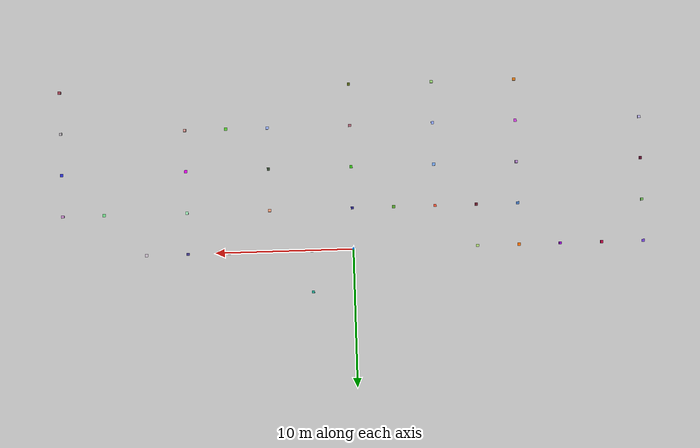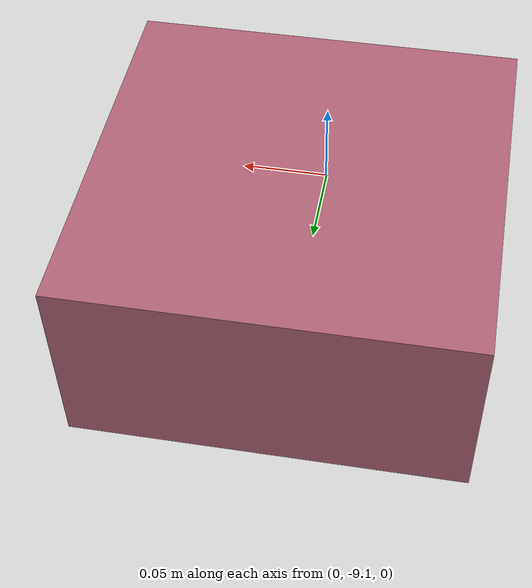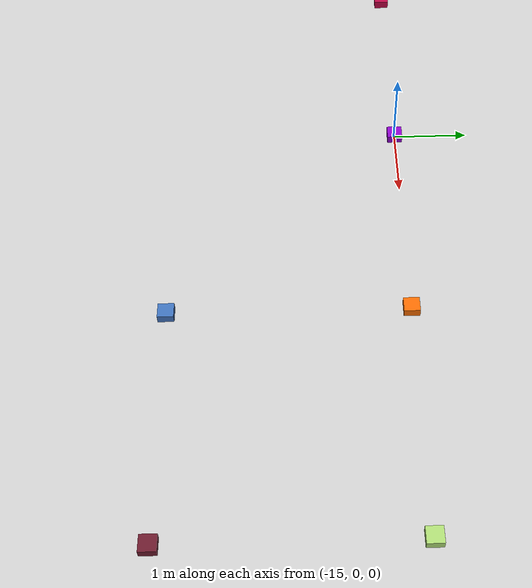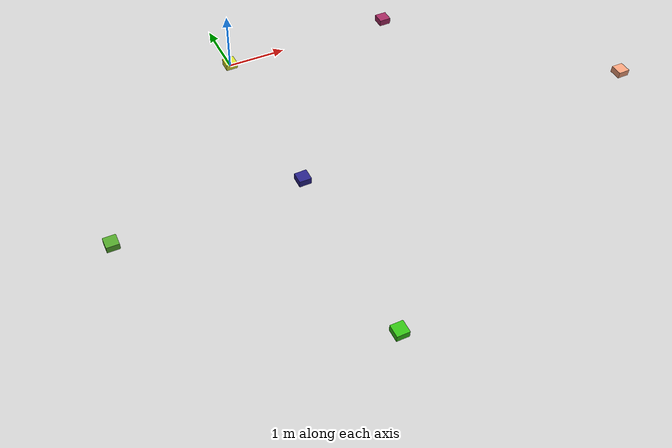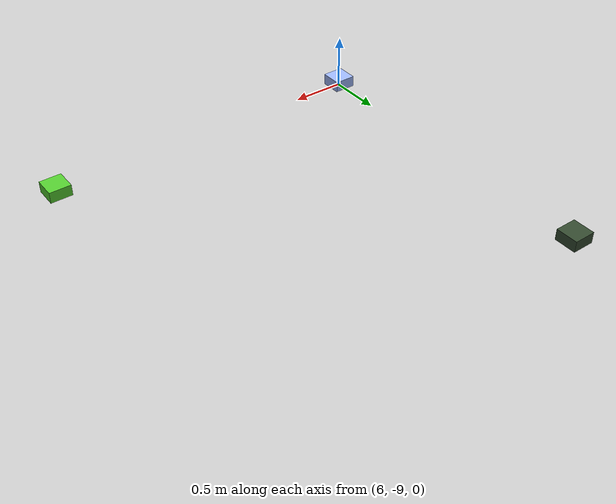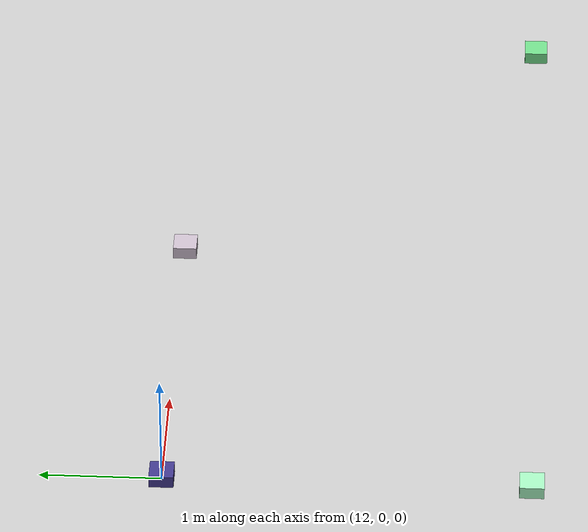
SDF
<?xml version="1.0" ?>
<sdf version="1.6">
  <world name="my_world">
   <gravity>0 0 -9.8</gravity>
    <model name='ground_plane'>
      <static>1</static>
      <link name='link'>
        <collision name='collision'>
          <geometry>
            <plane>
              <normal>0 0 1</normal>
              <size>200 200</size>
            </plane>
          </geometry>
          <surface>
            <friction>
              <ode>
                <mu>100</mu>
                <mu2>50</mu2>
              </ode>
              <torsional>
                <ode/>
              </torsional>
            </friction>
            <contact>
              <ode/>
            </contact>
            <bounce/>
          </surface>
          <max_contacts>10</max_contacts>
        </collision>
        <visual name='visual'>
          <cast_shadows>0</cast_shadows>
          <geometry>
            <plane>
              <normal>0 0 1</normal>
              <size>200 200</size>
            </plane>
          </geometry>
          <geometry>
            <mesh>
              <uri>file://media/materials/textures/grid_square.dae</uri>
              <scale>1 1 1</scale> <!-- Adjust the length and width of each grid square -->
            </mesh>
          </geometry>
          <material>
            <script>
              <uri>file://media/materials/scripts/gazebo.material</uri>
              <name>Gazebo/Grey</name>
            </script>
          </material>
        </visual>
        <self_collide>0</self_collide>
        <enable_wind>0</enable_wind>
        <kinematic>0</kinematic>
      </link>
    </model>

      <model name="AddisAbaba">
      <pose>0 0 0 0 -0 0</pose>
      <static>true</static>
      <link name='link'>
        <visual name='visual'>
          <geometry>
            <box>
              <size>0.2 0.2 0.2</size>
            </box>
          </geometry>
          <material>
            <ambient>0.837840692126784 0.867170784322269 0.18875320306435328 1</ambient>
            <diffuse>0.837840692126784 0.867170784322269 0.18875320306435328 1</diffuse>
            <emissive>0.837840692126784 0.867170784322269 0.18875320306435328 1</emissive>
          </material>
        </visual>
        <self_collide>0</self_collide>
        <inertial>
          <pose>0 0 0 0 -0 0</pose>
          <inertia>
            <ixx>1</ixx>
            <ixy>0</ixy>
            <ixz>0</ixz>
            <iyy>1</iyy>
            <iyz>0</iyz>
            <izz>1</izz>
          </inertia>
          <mass>1</mass>
        </inertial>
        <enable_wind>0</enable_wind>
        <kinematic>0</kinematic>
      </link>
    </model>

      <model name="Debrebirhan">
      <pose>3 3 0 0 -0 0</pose>
      <static>true</static>
      <link name='link'>
        <visual name='visual'>
          <geometry>
            <box>
              <size>0.2 0.2 0.2</size>
            </box>
          </geometry>
          <material>
            <ambient>0.11021136016832589 0.63514257290884 0.5560109234963666 1</ambient>
            <diffuse>0.11021136016832589 0.63514257290884 0.5560109234963666 1</diffuse>
            <emissive>0.11021136016832589 0.63514257290884 0.5560109234963666 1</emissive>
          </material>
        </visual>
        <self_collide>0</self_collide>
        <inertial>
          <pose>0 0 0 0 -0 0</pose>
          <inertia>
            <ixx>1</ixx>
            <ixy>0</ixy>
            <ixz>0</ixz>
            <iyy>1</iyy>
            <iyz>0</iyz>
            <izz>1</izz>
          </inertia>
          <mass>1</mass>
        </inertial>
        <enable_wind>0</enable_wind>
        <kinematic>0</kinematic>
      </link>
    </model>

      <model name="Adama">
      <pose>3 0 0 0 -0 0</pose>
      <static>true</static>
      <link name='link'>
        <visual name='visual'>
          <geometry>
            <box>
              <size>0.2 0.2 0.2</size>
            </box>
          </geometry>
          <material>
            <ambient>0.6329121261911624 0.16091573979236928 0.375223912684134 1</ambient>
            <diffuse>0.6329121261911624 0.16091573979236928 0.375223912684134 1</diffuse>
            <emissive>0.6329121261911624 0.16091573979236928 0.375223912684134 1</emissive>
          </material>
        </visual>
        <self_collide>0</self_collide>
        <inertial>
          <pose>0 0 0 0 -0 0</pose>
          <inertia>
            <ixx>1</ixx>
            <ixy>0</ixy>
            <ixz>0</ixz>
            <iyy>1</iyy>
            <iyz>0</iyz>
            <izz>1</izz>
          </inertia>
          <mass>1</mass>
        </inertial>
        <enable_wind>0</enable_wind>
        <kinematic>0</kinematic>
      </link>
    </model>

      <model name="Batu">
      <pose>0 -3 0 0 -0 0</pose>
      <static>true</static>
      <link name='link'>
        <visual name='visual'>
          <geometry>
            <box>
              <size>0.2 0.2 0.2</size>
            </box>
          </geometry>
          <material>
            <ambient>0.1553083001261688 0.13008156241125668 0.5267260401865164 1</ambient>
            <diffuse>0.1553083001261688 0.13008156241125668 0.5267260401865164 1</diffuse>
            <emissive>0.1553083001261688 0.13008156241125668 0.5267260401865164 1</emissive>
          </material>
        </visual>
        <self_collide>0</self_collide>
        <inertial>
          <pose>0 0 0 0 -0 0</pose>
          <inertia>
            <ixx>1</ixx>
            <ixy>0</ixy>
            <ixz>0</ixz>
            <iyy>1</iyy>
            <iyz>0</iyz>
            <izz>1</izz>
          </inertia>
          <mass>1</mass>
        </inertial>
        <enable_wind>0</enable_wind>
        <kinematic>0</kinematic>
      </link>
    </model>

      <model name="Assela">
      <pose>6 -3 0 0 -0 0</pose>
      <static>true</static>
      <link name='link'>
        <visual name='visual'>
          <geometry>
            <box>
              <size>0.2 0.2 0.2</size>
            </box>
          </geometry>
          <material>
            <ambient>0.9453897910569939 0.6205750120314741 0.4771886746758103 1</ambient>
            <diffuse>0.9453897910569939 0.6205750120314741 0.4771886746758103 1</diffuse>
            <emissive>0.9453897910569939 0.6205750120314741 0.4771886746758103 1</emissive>
          </material>
        </visual>
        <self_collide>0</self_collide>
        <inertial>
          <pose>0 0 0 0 -0 0</pose>
          <inertia>
            <ixx>1</ixx>
            <ixy>0</ixy>
            <ixz>0</ixz>
            <iyy>1</iyy>
            <iyz>0</iyz>
            <izz>1</izz>
          </inertia>
          <mass>1</mass>
        </inertial>
        <enable_wind>0</enable_wind>
        <kinematic>0</kinematic>
      </link>
    </model>

      <model name="Shashemene">
      <pose>0 -6 0 0 -0 0</pose>
      <static>true</static>
      <link name='link'>
        <visual name='visual'>
          <geometry>
            <box>
              <size>0.2 0.2 0.2</size>
            </box>
          </geometry>
          <material>
            <ambient>0.19769043545330722 0.7484289718310358 0.07895643451841838 1</ambient>
            <diffuse>0.19769043545330722 0.7484289718310358 0.07895643451841838 1</diffuse>
            <emissive>0.19769043545330722 0.7484289718310358 0.07895643451841838 1</emissive>
          </material>
        </visual>
        <self_collide>0</self_collide>
        <inertial>
          <pose>0 0 0 0 -0 0</pose>
          <inertia>
            <ixx>1</ixx>
            <ixy>0</ixy>
            <ixz>0</ixz>
            <iyy>1</iyy>
            <iyz>0</iyz>
            <izz>1</izz>
          </inertia>
          <mass>1</mass>
        </inertial>
        <enable_wind>0</enable_wind>
        <kinematic>0</kinematic>
      </link>
    </model>

      <model name="Hawasa">
      <pose>0 -9 0 0 -0 0</pose>
      <static>true</static>
      <link name='link'>
        <visual name='visual'>
          <geometry>
            <box>
              <size>0.2 0.2 0.2</size>
            </box>
          </geometry>
          <material>
            <ambient>0.6551940611539893 0.37052358948685693 0.442054203336284 1</ambient>
            <diffuse>0.6551940611539893 0.37052358948685693 0.442054203336284 1</diffuse>
            <emissive>0.6551940611539893 0.37052358948685693 0.442054203336284 1</emissive>
          </material>
        </visual>
        <self_collide>0</self_collide>
        <inertial>
          <pose>0 0 0 0 -0 0</pose>
          <inertia>
            <ixx>1</ixx>
            <ixy>0</ixy>
            <ixz>0</ixz>
            <iyy>1</iyy>
            <iyz>0</iyz>
            <izz>1</izz>
          </inertia>
          <mass>1</mass>
        </inertial>
        <enable_wind>0</enable_wind>
        <kinematic>0</kinematic>
      </link>
    </model>

      <model name="Dilla">
      <pose>0 -12 0 0 -0 0</pose>
      <static>true</static>
      <link name='link'>
        <visual name='visual'>
          <geometry>
            <box>
              <size>0.2 0.2 0.2</size>
            </box>
          </geometry>
          <material>
            <ambient>0.3220190205016378 0.3856239517725688 0.06905224761508455 1</ambient>
            <diffuse>0.3220190205016378 0.3856239517725688 0.06905224761508455 1</diffuse>
            <emissive>0.3220190205016378 0.3856239517725688 0.06905224761508455 1</emissive>
          </material>
        </visual>
        <self_collide>0</self_collide>
        <inertial>
          <pose>0 0 0 0 -0 0</pose>
          <inertia>
            <ixx>1</ixx>
            <ixy>0</ixy>
            <ixz>0</ixz>
            <iyy>1</iyy>
            <iyz>0</iyz>
            <izz>1</izz>
          </inertia>
          <mass>1</mass>
        </inertial>
        <enable_wind>0</enable_wind>
        <kinematic>0</kinematic>
      </link>
    </model>

      <model name="Assasa">
      <pose>6 -6 0 0 -0 0</pose>
      <static>true</static>
      <link name='link'>
        <visual name='visual'>
          <geometry>
            <box>
              <size>0.2 0.2 0.2</size>
            </box>
          </geometry>
          <material>
            <ambient>0.19971592408981886 0.2863755337983137 0.1847598079396907 1</ambient>
            <diffuse>0.19971592408981886 0.2863755337983137 0.1847598079396907 1</diffuse>
            <emissive>0.19971592408981886 0.2863755337983137 0.1847598079396907 1</emissive>
          </material>
        </visual>
        <self_collide>0</self_collide>
        <inertial>
          <pose>0 0 0 0 -0 0</pose>
          <inertia>
            <ixx>1</ixx>
            <ixy>0</ixy>
            <ixz>0</ixz>
            <iyy>1</iyy>
            <iyz>0</iyz>
            <izz>1</izz>
          </inertia>
          <mass>1</mass>
        </inertial>
        <enable_wind>0</enable_wind>
        <kinematic>0</kinematic>
      </link>
    </model>

      <model name="Dodolla">
      <pose>6 -9 0 0 -0 0</pose>
      <static>true</static>
      <link name='link'>
        <visual name='visual'>
          <geometry>
            <box>
              <size>0.2 0.2 0.2</size>
            </box>
          </geometry>
          <material>
            <ambient>0.6200001352528746 0.7168261816216244 0.9882337272025341 1</ambient>
            <diffuse>0.6200001352528746 0.7168261816216244 0.9882337272025341 1</diffuse>
            <emissive>0.6200001352528746 0.7168261816216244 0.9882337272025341 1</emissive>
          </material>
        </visual>
        <self_collide>0</self_collide>
        <inertial>
          <pose>0 0 0 0 -0 0</pose>
          <inertia>
            <ixx>1</ixx>
            <ixy>0</ixy>
            <ixz>0</ixz>
            <iyy>1</iyy>
            <iyz>0</iyz>
            <izz>1</izz>
          </inertia>
          <mass>1</mass>
        </inertial>
        <enable_wind>0</enable_wind>
        <kinematic>0</kinematic>
      </link>
    </model>

      <model name="Bale">
      <pose>9 -9 0 0 -0 0</pose>
      <static>true</static>
      <link name='link'>
        <visual name='visual'>
          <geometry>
            <box>
              <size>0.2 0.2 0.2</size>
            </box>
          </geometry>
          <material>
            <ambient>0.33278344873034493 0.8026117648819241 0.18802215158315672 1</ambient>
            <diffuse>0.33278344873034493 0.8026117648819241 0.18802215158315672 1</diffuse>
            <emissive>0.33278344873034493 0.8026117648819241 0.18802215158315672 1</emissive>
          </material>
        </visual>
        <self_collide>0</self_collide>
        <inertial>
          <pose>0 0 0 0 -0 0</pose>
          <inertia>
            <ixx>1</ixx>
            <ixy>0</ixy>
            <ixz>0</ixz>
            <iyy>1</iyy>
            <iyz>0</iyz>
            <izz>1</izz>
          </inertia>
          <mass>1</mass>
        </inertial>
        <enable_wind>0</enable_wind>
        <kinematic>0</kinematic>
      </link>
    </model>

      <model name="Goba">
      <pose>12 -6 0 0 -0 0</pose>
      <static>true</static>
      <link name='link'>
        <visual name='visual'>
          <geometry>
            <box>
              <size>0.2 0.2 0.2</size>
            </box>
          </geometry>
          <material>
            <ambient>0.872696224696223 0.01678969679831055 0.9078953194363549 1</ambient>
            <diffuse>0.872696224696223 0.01678969679831055 0.9078953194363549 1</diffuse>
            <emissive>0.872696224696223 0.01678969679831055 0.9078953194363549 1</emissive>
          </material>
        </visual>
        <self_collide>0</self_collide>
        <inertial>
          <pose>0 0 0 0 -0 0</pose>
          <inertia>
            <ixx>1</ixx>
            <ixy>0</ixy>
            <ixz>0</ixz>
            <iyy>1</iyy>
            <iyz>0</iyz>
            <izz>1</izz>
          </inertia>
          <mass>1</mass>
        </inertial>
        <enable_wind>0</enable_wind>
        <kinematic>0</kinematic>
      </link>
    </model>

      <model name="Softoumer">
      <pose>12 -9 0 0 -0 0</pose>
      <static>true</static>
      <link name='link'>
        <visual name='visual'>
          <geometry>
            <box>
              <size>0.2 0.2 0.2</size>
            </box>
          </geometry>
          <material>
            <ambient>0.8532857372821485 0.595786231751914 0.5697307312853777 1</ambient>
            <diffuse>0.8532857372821485 0.595786231751914 0.5697307312853777 1</diffuse>
            <emissive>0.8532857372821485 0.595786231751914 0.5697307312853777 1</emissive>
          </material>
        </visual>
        <self_collide>0</self_collide>
        <inertial>
          <pose>0 0 0 0 -0 0</pose>
          <inertia>
            <ixx>1</ixx>
            <ixy>0</ixy>
            <ixz>0</ixz>
            <iyy>1</iyy>
            <iyz>0</iyz>
            <izz>1</izz>
          </inertia>
          <mass>1</mass>
        </inertial>
        <enable_wind>0</enable_wind>
        <kinematic>0</kinematic>
      </link>
    </model>

      <model name="Matahara">
      <pose>6 0 0 0 -0 0</pose>
      <static>true</static>
      <link name='link'>
        <visual name='visual'>
          <geometry>
            <box>
              <size>0.2 0.2 0.2</size>
            </box>
          </geometry>
          <material>
            <ambient>0.8029285780605484 0.20693257203741688 0.9554051826423965 1</ambient>
            <diffuse>0.8029285780605484 0.20693257203741688 0.9554051826423965 1</diffuse>
            <emissive>0.8029285780605484 0.20693257203741688 0.9554051826423965 1</emissive>
          </material>
        </visual>
        <self_collide>0</self_collide>
        <inertial>
          <pose>0 0 0 0 -0 0</pose>
          <inertia>
            <ixx>1</ixx>
            <ixy>0</ixy>
            <ixz>0</ixz>
            <iyy>1</iyy>
            <iyz>0</iyz>
            <izz>1</izz>
          </inertia>
          <mass>1</mass>
        </inertial>
        <enable_wind>0</enable_wind>
        <kinematic>0</kinematic>
      </link>
    </model>

      <model name="Awash">
      <pose>9 0 0 0 -0 0</pose>
      <static>true</static>
      <link name='link'>
        <visual name='visual'>
          <geometry>
            <box>
              <size>0.2 0.2 0.2</size>
            </box>
          </geometry>
          <material>
            <ambient>0.5819405244460549 0.6711687679511 0.0538294470291234 1</ambient>
            <diffuse>0.5819405244460549 0.6711687679511 0.0538294470291234 1</diffuse>
            <emissive>0.5819405244460549 0.6711687679511 0.0538294470291234 1</emissive>
          </material>
        </visual>
        <self_collide>0</self_collide>
        <inertial>
          <pose>0 0 0 0 -0 0</pose>
          <inertia>
            <ixx>1</ixx>
            <ixy>0</ixy>
            <ixz>0</ixz>
            <iyy>1</iyy>
            <iyz>0</iyz>
            <izz>1</izz>
          </inertia>
          <mass>1</mass>
        </inertial>
        <enable_wind>0</enable_wind>
        <kinematic>0</kinematic>
      </link>
    </model>

      <model name="Harar">
      <pose>12 -3 0 0 -0 0</pose>
      <static>true</static>
      <link name='link'>
        <visual name='visual'>
          <geometry>
            <box>
              <size>0.2 0.2 0.2</size>
            </box>
          </geometry>
          <material>
            <ambient>0.651743163104007 0.9584192574321805 0.7580591155379144 1</ambient>
            <diffuse>0.651743163104007 0.9584192574321805 0.7580591155379144 1</diffuse>
            <emissive>0.651743163104007 0.9584192574321805 0.7580591155379144 1</emissive>
          </material>
        </visual>
        <self_collide>0</self_collide>
        <inertial>
          <pose>0 0 0 0 -0 0</pose>
          <inertia>
            <ixx>1</ixx>
            <ixy>0</ixy>
            <ixz>0</ixz>
            <iyy>1</iyy>
            <iyz>0</iyz>
            <izz>1</izz>
          </inertia>
          <mass>1</mass>
        </inertial>
        <enable_wind>0</enable_wind>
        <kinematic>0</kinematic>
      </link>
    </model>

      <model name="Diredawa">
      <pose>15 0 0 0 -0 0</pose>
      <static>true</static>
      <link name='link'>
        <visual name='visual'>
          <geometry>
            <box>
              <size>0.2 0.2 0.2</size>
            </box>
          </geometry>
          <material>
            <ambient>0.8027977459423752 0.7510262955205178 0.810495029525123 1</ambient>
            <diffuse>0.8027977459423752 0.7510262955205178 0.810495029525123 1</diffuse>
            <emissive>0.8027977459423752 0.7510262955205178 0.810495029525123 1</emissive>
          </material>
        </visual>
        <self_collide>0</self_collide>
        <inertial>
          <pose>0 0 0 0 -0 0</pose>
          <inertia>
            <ixx>1</ixx>
            <ixy>0</ixy>
            <ixz>0</ixz>
            <iyy>1</iyy>
            <iyz>0</iyz>
            <izz>1</izz>
          </inertia>
          <mass>1</mass>
        </inertial>
        <enable_wind>0</enable_wind>
        <kinematic>0</kinematic>
      </link>
    </model>

      <model name="Babile">
      <pose>18 -3 0 0 -0 0</pose>
      <static>true</static>
      <link name='link'>
        <visual name='visual'>
          <geometry>
            <box>
              <size>0.2 0.2 0.2</size>
            </box>
          </geometry>
          <material>
            <ambient>0.4507820630709587 0.8673272017579376 0.5446735850792898 1</ambient>
            <diffuse>0.4507820630709587 0.8673272017579376 0.5446735850792898 1</diffuse>
            <emissive>0.4507820630709587 0.8673272017579376 0.5446735850792898 1</emissive>
          </material>
        </visual>
        <self_collide>0</self_collide>
        <inertial>
          <pose>0 0 0 0 -0 0</pose>
          <inertia>
            <ixx>1</ixx>
            <ixy>0</ixy>
            <ixz>0</ixz>
            <iyy>1</iyy>
            <iyz>0</iyz>
            <izz>1</izz>
          </inertia>
          <mass>1</mass>
        </inertial>
        <enable_wind>0</enable_wind>
        <kinematic>0</kinematic>
      </link>
    </model>

      <model name="Jigjiga">
      <pose>21 -3 0 0 -0 0</pose>
      <static>true</static>
      <link name='link'>
        <visual name='visual'>
          <geometry>
            <box>
              <size>0.2 0.2 0.2</size>
            </box>
          </geometry>
          <material>
            <ambient>0.786755543765698 0.5417922728920173 0.802401431666569 1</ambient>
            <diffuse>0.786755543765698 0.5417922728920173 0.802401431666569 1</diffuse>
            <emissive>0.786755543765698 0.5417922728920173 0.802401431666569 1</emissive>
          </material>
        </visual>
        <self_collide>0</self_collide>
        <inertial>
          <pose>0 0 0 0 -0 0</pose>
          <inertia>
            <ixx>1</ixx>
            <ixy>0</ixy>
            <ixz>0</ixz>
            <iyy>1</iyy>
            <iyz>0</iyz>
            <izz>1</izz>
          </inertia>
          <mass>1</mass>
        </inertial>
        <enable_wind>0</enable_wind>
        <kinematic>0</kinematic>
      </link>
    </model>

      <model name="Dagahabur">
      <pose>21 -6 0 0 -0 0</pose>
      <static>true</static>
      <link name='link'>
        <visual name='visual'>
          <geometry>
            <box>
              <size>0.2 0.2 0.2</size>
            </box>
          </geometry>
          <material>
            <ambient>0.16112934070070606 0.1834317956431193 0.8125709335246278 1</ambient>
            <diffuse>0.16112934070070606 0.1834317956431193 0.8125709335246278 1</diffuse>
            <emissive>0.16112934070070606 0.1834317956431193 0.8125709335246278 1</emissive>
          </material>
        </visual>
        <self_collide>0</self_collide>
        <inertial>
          <pose>0 0 0 0 -0 0</pose>
          <inertia>
            <ixx>1</ixx>
            <ixy>0</ixy>
            <ixz>0</ixz>
            <iyy>1</iyy>
            <iyz>0</iyz>
            <izz>1</izz>
          </inertia>
          <mass>1</mass>
        </inertial>
        <enable_wind>0</enable_wind>
        <kinematic>0</kinematic>
      </link>
    </model>

      <model name="Kebridehar">
      <pose>21 -9 0 0 -0 0</pose>
      <static>true</static>
      <link name='link'>
        <visual name='visual'>
          <geometry>
            <box>
              <size>0.2 0.2 0.2</size>
            </box>
          </geometry>
          <material>
            <ambient>0.7001952338067781 0.6716948381685803 0.7066639578154397 1</ambient>
            <diffuse>0.7001952338067781 0.6716948381685803 0.7066639578154397 1</diffuse>
            <emissive>0.7001952338067781 0.6716948381685803 0.7066639578154397 1</emissive>
          </material>
        </visual>
        <self_collide>0</self_collide>
        <inertial>
          <pose>0 0 0 0 -0 0</pose>
          <inertia>
            <ixx>1</ixx>
            <ixy>0</ixy>
            <ixz>0</ixz>
            <iyy>1</iyy>
            <iyz>0</iyz>
            <izz>1</izz>
          </inertia>
          <mass>1</mass>
        </inertial>
        <enable_wind>0</enable_wind>
        <kinematic>0</kinematic>
      </link>
    </model>

      <model name="Gode">
      <pose>21 -12 0 0 -0 0</pose>
      <static>true</static>
      <link name='link'>
        <visual name='visual'>
          <geometry>
            <box>
              <size>0.2 0.2 0.2</size>
            </box>
          </geometry>
          <material>
            <ambient>0.6225334183500009 0.2553405633723983 0.325457292926959 1</ambient>
            <diffuse>0.6225334183500009 0.2553405633723983 0.325457292926959 1</diffuse>
            <emissive>0.6225334183500009 0.2553405633723983 0.325457292926959 1</emissive>
          </material>
        </visual>
        <self_collide>0</self_collide>
        <inertial>
          <pose>0 0 0 0 -0 0</pose>
          <inertia>
            <ixx>1</ixx>
            <ixy>0</ixy>
            <ixz>0</ixz>
            <iyy>1</iyy>
            <iyz>0</iyz>
            <izz>1</izz>
          </inertia>
          <mass>1</mass>
        </inertial>
        <enable_wind>0</enable_wind>
        <kinematic>0</kinematic>
      </link>
    </model>

      <model name="Chiro">
      <pose>12 0 0 0 -0 0</pose>
      <static>true</static>
      <link name='link'>
        <visual name='visual'>
          <geometry>
            <box>
              <size>0.2 0.2 0.2</size>
            </box>
          </geometry>
          <material>
            <ambient>0.25814340234373 0.22268088925038554 0.5546023891147831 1</ambient>
            <diffuse>0.25814340234373 0.22268088925038554 0.5546023891147831 1</diffuse>
            <emissive>0.25814340234373 0.22268088925038554 0.5546023891147831 1</emissive>
          </material>
        </visual>
        <self_collide>0</self_collide>
        <inertial>
          <pose>0 0 0 0 -0 0</pose>
          <inertia>
            <ixx>1</ixx>
            <ixy>0</ixy>
            <ixz>0</ixz>
            <iyy>1</iyy>
            <iyz>0</iyz>
            <izz>1</izz>
          </inertia>
          <mass>1</mass>
        </inertial>
        <enable_wind>0</enable_wind>
        <kinematic>0</kinematic>
      </link>
    </model>

      <model name="Butajira">
      <pose>-3 -3 0 0 -0 0</pose>
      <static>true</static>
      <link name='link'>
        <visual name='visual'>
          <geometry>
            <box>
              <size>0.2 0.2 0.2</size>
            </box>
          </geometry>
          <material>
            <ambient>0.31861326580224614 0.6379588519835316 0.16581546845232098 1</ambient>
            <diffuse>0.31861326580224614 0.6379588519835316 0.16581546845232098 1</diffuse>
            <emissive>0.31861326580224614 0.6379588519835316 0.16581546845232098 1</emissive>
          </material>
        </visual>
        <self_collide>0</self_collide>
        <inertial>
          <pose>0 0 0 0 -0 0</pose>
          <inertia>
            <ixx>1</ixx>
            <ixy>0</ixy>
            <ixz>0</ixz>
            <iyy>1</iyy>
            <iyz>0</iyz>
            <izz>1</izz>
          </inertia>
          <mass>1</mass>
        </inertial>
        <enable_wind>0</enable_wind>
        <kinematic>0</kinematic>
      </link>
    </model>

      <model name="Nekemete">
      <pose>-12 0 0 0 -0 0</pose>
      <static>true</static>
      <link name='link'>
        <visual name='visual'>
          <geometry>
            <box>
              <size>0.2 0.2 0.2</size>
            </box>
          </geometry>
          <material>
            <ambient>0.9535802853557632 0.41730402524758115 0.005535365581907037 1</ambient>
            <diffuse>0.9535802853557632 0.41730402524758115 0.005535365581907037 1</diffuse>
            <emissive>0.9535802853557632 0.41730402524758115 0.005535365581907037 1</emissive>
          </material>
        </visual>
        <self_collide>0</self_collide>
        <inertial>
          <pose>0 0 0 0 -0 0</pose>
          <inertia>
            <ixx>1</ixx>
            <ixy>0</ixy>
            <ixz>0</ixz>
            <iyy>1</iyy>
            <iyz>0</iyz>
            <izz>1</izz>
          </inertia>
          <mass>1</mass>
        </inertial>
        <enable_wind>0</enable_wind>
        <kinematic>0</kinematic>
      </link>
    </model>

      <model name="Bedelle">
      <pose>-12 -3 0 0 -0 0</pose>
      <static>true</static>
      <link name='link'>
        <visual name='visual'>
          <geometry>
            <box>
              <size>0.2 0.2 0.2</size>
            </box>
          </geometry>
          <material>
            <ambient>0.24356837522061192 0.4403384842404624 0.7234532146983935 1</ambient>
            <diffuse>0.24356837522061192 0.4403384842404624 0.7234532146983935 1</diffuse>
            <emissive>0.24356837522061192 0.4403384842404624 0.7234532146983935 1</emissive>
          </material>
        </visual>
        <self_collide>0</self_collide>
        <inertial>
          <pose>0 0 0 0 -0 0</pose>
          <inertia>
            <ixx>1</ixx>
            <ixy>0</ixy>
            <ixz>0</ixz>
            <iyy>1</iyy>
            <iyz>0</iyz>
            <izz>1</izz>
          </inertia>
          <mass>1</mass>
        </inertial>
        <enable_wind>0</enable_wind>
        <kinematic>0</kinematic>
      </link>
    </model>

      <model name="Jimma">
      <pose>-12 -6 0 0 -0 0</pose>
      <static>true</static>
      <link name='link'>
        <visual name='visual'>
          <geometry>
            <box>
              <size>0.2 0.2 0.2</size>
            </box>
          </geometry>
          <material>
            <ambient>0.7209543982192637 0.5202903176112289 0.8283346434897848 1</ambient>
            <diffuse>0.7209543982192637 0.5202903176112289 0.8283346434897848 1</diffuse>
            <emissive>0.7209543982192637 0.5202903176112289 0.8283346434897848 1</emissive>
          </material>
        </visual>
        <self_collide>0</self_collide>
        <inertial>
          <pose>0 0 0 0 -0 0</pose>
          <inertia>
            <ixx>1</ixx>
            <ixy>0</ixy>
            <ixz>0</ixz>
            <iyy>1</iyy>
            <iyz>0</iyz>
            <izz>1</izz>
          </inertia>
          <mass>1</mass>
        </inertial>
        <enable_wind>0</enable_wind>
        <kinematic>0</kinematic>
      </link>
    </model>

      <model name="Bonga">
      <pose>-12 -9 0 0 -0 0</pose>
      <static>true</static>
      <link name='link'>
        <visual name='visual'>
          <geometry>
            <box>
              <size>0.2 0.2 0.2</size>
            </box>
          </geometry>
          <material>
            <ambient>0.8447702030512102 0.2367935386281934 0.8950375820327479 1</ambient>
            <diffuse>0.8447702030512102 0.2367935386281934 0.8950375820327479 1</diffuse>
            <emissive>0.8447702030512102 0.2367935386281934 0.8950375820327479 1</emissive>
          </material>
        </visual>
        <self_collide>0</self_collide>
        <inertial>
          <pose>0 0 0 0 -0 0</pose>
          <inertia>
            <ixx>1</ixx>
            <ixy>0</ixy>
            <ixz>0</ixz>
            <iyy>1</iyy>
            <iyz>0</iyz>
            <izz>1</izz>
          </inertia>
          <mass>1</mass>
        </inertial>
        <enable_wind>0</enable_wind>
        <kinematic>0</kinematic>
      </link>
    </model>

      <model name="Dawro">
      <pose>-12 -12 0 0 -0 0</pose>
      <static>true</static>
      <link name='link'>
        <visual name='visual'>
          <geometry>
            <box>
              <size>0.2 0.2 0.2</size>
            </box>
          </geometry>
          <material>
            <ambient>0.897736752127745 0.48058279772213397 0.07226287103580842 1</ambient>
            <diffuse>0.897736752127745 0.48058279772213397 0.07226287103580842 1</diffuse>
            <emissive>0.897736752127745 0.48058279772213397 0.07226287103580842 1</emissive>
          </material>
        </visual>
        <self_collide>0</self_collide>
        <inertial>
          <pose>0 0 0 0 -0 0</pose>
          <inertia>
            <ixx>1</ixx>
            <ixy>0</ixy>
            <ixz>0</ixz>
            <iyy>1</iyy>
            <iyz>0</iyz>
            <izz>1</izz>
          </inertia>
          <mass>1</mass>
        </inertial>
        <enable_wind>0</enable_wind>
        <kinematic>0</kinematic>
      </link>
    </model>

      <model name="Ambo">
      <pose>-9 0 0 0 -0 0</pose>
      <static>true</static>
      <link name='link'>
        <visual name='visual'>
          <geometry>
            <box>
              <size>0.2 0.2 0.2</size>
            </box>
          </geometry>
          <material>
            <ambient>0.6715217346583482 0.8447515358095748 0.45080498728837826 1</ambient>
            <diffuse>0.6715217346583482 0.8447515358095748 0.45080498728837826 1</diffuse>
            <emissive>0.6715217346583482 0.8447515358095748 0.45080498728837826 1</emissive>
          </material>
        </visual>
        <self_collide>0</self_collide>
        <inertial>
          <pose>0 0 0 0 -0 0</pose>
          <inertia>
            <ixx>1</ixx>
            <ixy>0</ixy>
            <ixz>0</ixz>
            <iyy>1</iyy>
            <iyz>0</iyz>
            <izz>1</izz>
          </inertia>
          <mass>1</mass>
        </inertial>
        <enable_wind>0</enable_wind>
        <kinematic>0</kinematic>
      </link>
    </model>

      <model name="Wolkite">
      <pose>-9 -3 0 0 -0 0</pose>
      <static>true</static>
      <link name='link'>
        <visual name='visual'>
          <geometry>
            <box>
              <size>0.2 0.2 0.2</size>
            </box>
          </geometry>
          <material>
            <ambient>0.4170317271814543 0.10329643944250622 0.17601575335430986 1</ambient>
            <diffuse>0.4170317271814543 0.10329643944250622 0.17601575335430986 1</diffuse>
            <emissive>0.4170317271814543 0.10329643944250622 0.17601575335430986 1</emissive>
          </material>
        </visual>
        <self_collide>0</self_collide>
        <inertial>
          <pose>0 0 0 0 -0 0</pose>
          <inertia>
            <ixx>1</ixx>
            <ixy>0</ixy>
            <ixz>0</ixz>
            <iyy>1</iyy>
            <iyz>0</iyz>
            <izz>1</izz>
          </inertia>
          <mass>1</mass>
        </inertial>
        <enable_wind>0</enable_wind>
        <kinematic>0</kinematic>
      </link>
    </model>

      <model name="Worabe">
      <pose>-6 -3 0 0 -0 0</pose>
      <static>true</static>
      <link name='link'>
        <visual name='visual'>
          <geometry>
            <box>
              <size>0.2 0.2 0.2</size>
            </box>
          </geometry>
          <material>
            <ambient>0.9424738781099888 0.32417431264773877 0.20801475372954692 1</ambient>
            <diffuse>0.9424738781099888 0.32417431264773877 0.20801475372954692 1</diffuse>
            <emissive>0.9424738781099888 0.32417431264773877 0.20801475372954692 1</emissive>
          </material>
        </visual>
        <self_collide>0</self_collide>
        <inertial>
          <pose>0 0 0 0 -0 0</pose>
          <inertia>
            <ixx>1</ixx>
            <ixy>0</ixy>
            <ixz>0</ixz>
            <iyy>1</iyy>
            <iyz>0</iyz>
            <izz>1</izz>
          </inertia>
          <mass>1</mass>
        </inertial>
        <enable_wind>0</enable_wind>
        <kinematic>0</kinematic>
      </link>
    </model>

      <model name="Hossana">
      <pose>-6 -6 0 0 -0 0</pose>
      <static>true</static>
      <link name='link'>
        <visual name='visual'>
          <geometry>
            <box>
              <size>0.2 0.2 0.2</size>
            </box>
          </geometry>
          <material>
            <ambient>0.4661270783717505 0.6601421646142748 0.9445398000879179 1</ambient>
            <diffuse>0.4661270783717505 0.6601421646142748 0.9445398000879179 1</diffuse>
            <emissive>0.4661270783717505 0.6601421646142748 0.9445398000879179 1</emissive>
          </material>
        </visual>
        <self_collide>0</self_collide>
        <inertial>
          <pose>0 0 0 0 -0 0</pose>
          <inertia>
            <ixx>1</ixx>
            <ixy>0</ixy>
            <ixz>0</ixz>
            <iyy>1</iyy>
            <iyz>0</iyz>
            <izz>1</izz>
          </inertia>
          <mass>1</mass>
        </inertial>
        <enable_wind>0</enable_wind>
        <kinematic>0</kinematic>
      </link>
    </model>

      <model name="Welaitasodo">
      <pose>-6 -9 0 0 -0 0</pose>
      <static>true</static>
      <link name='link'>
        <visual name='visual'>
          <geometry>
            <box>
              <size>0.2 0.2 0.2</size>
            </box>
          </geometry>
          <material>
            <ambient>0.5647959248548329 0.6572976265102496 0.9957455219241487 1</ambient>
            <diffuse>0.5647959248548329 0.6572976265102496 0.9957455219241487 1</diffuse>
            <emissive>0.5647959248548329 0.6572976265102496 0.9957455219241487 1</emissive>
          </material>
        </visual>
        <self_collide>0</self_collide>
        <inertial>
          <pose>0 0 0 0 -0 0</pose>
          <inertia>
            <ixx>1</ixx>
            <ixy>0</ixy>
            <ixz>0</ixz>
            <iyy>1</iyy>
            <iyz>0</iyz>
            <izz>1</izz>
          </inertia>
          <mass>1</mass>
        </inertial>
        <enable_wind>0</enable_wind>
        <kinematic>0</kinematic>
      </link>
    </model>

      <model name="Arbaminch">
      <pose>-6 -12 0 0 -0 0</pose>
      <static>true</static>
      <link name='link'>
        <visual name='visual'>
          <geometry>
            <box>
              <size>0.2 0.2 0.2</size>
            </box>
          </geometry>
          <material>
            <ambient>0.6020815284510532 0.8472709441298564 0.47009079694164513 1</ambient>
            <diffuse>0.6020815284510532 0.8472709441298564 0.47009079694164513 1</diffuse>
            <emissive>0.6020815284510532 0.8472709441298564 0.47009079694164513 1</emissive>
          </material>
        </visual>
        <self_collide>0</self_collide>
        <inertial>
          <pose>0 0 0 0 -0 0</pose>
          <inertia>
            <ixx>1</ixx>
            <ixy>0</ixy>
            <ixz>0</ixz>
            <iyy>1</iyy>
            <iyz>0</iyz>
            <izz>1</izz>
          </inertia>
          <mass>1</mass>
        </inertial>
        <enable_wind>0</enable_wind>
        <kinematic>0</kinematic>
      </link>
    </model>

      <model name="Gambella">
      <pose>-21 0 0 0 -0 0</pose>
      <static>true</static>
      <link name='link'>
        <visual name='visual'>
          <geometry>
            <box>
              <size>0.2 0.2 0.2</size>
            </box>
          </geometry>
          <material>
            <ambient>0.4441815568453059 0.2528503341722532 0.8284234501059848 1</ambient>
            <diffuse>0.4441815568453059 0.2528503341722532 0.8284234501059848 1</diffuse>
            <emissive>0.4441815568453059 0.2528503341722532 0.8284234501059848 1</emissive>
          </material>
        </visual>
        <self_collide>0</self_collide>
        <inertial>
          <pose>0 0 0 0 -0 0</pose>
          <inertia>
            <ixx>1</ixx>
            <ixy>0</ixy>
            <ixz>0</ixz>
            <iyy>1</iyy>
            <iyz>0</iyz>
            <izz>1</izz>
          </inertia>
          <mass>1</mass>
        </inertial>
        <enable_wind>0</enable_wind>
        <kinematic>0</kinematic>
      </link>
    </model>

      <model name="Dembidollo">
      <pose>-18 0 0 0 -0 0</pose>
      <static>true</static>
      <link name='link'>
        <visual name='visual'>
          <geometry>
            <box>
              <size>0.2 0.2 0.2</size>
            </box>
          </geometry>
          <material>
            <ambient>0.7238675632782721 0.019463719219975695 0.26653152863779106 1</ambient>
            <diffuse>0.7238675632782721 0.019463719219975695 0.26653152863779106 1</diffuse>
            <emissive>0.7238675632782721 0.019463719219975695 0.26653152863779106 1</emissive>
          </material>
        </visual>
        <self_collide>0</self_collide>
        <inertial>
          <pose>0 0 0 0 -0 0</pose>
          <inertia>
            <ixx>1</ixx>
            <ixy>0</ixy>
            <ixz>0</ixz>
            <iyy>1</iyy>
            <iyz>0</iyz>
            <izz>1</izz>
          </inertia>
          <mass>1</mass>
        </inertial>
        <enable_wind>0</enable_wind>
        <kinematic>0</kinematic>
      </link>
    </model>

      <model name="Gimbi">
      <pose>-15 0 0 0 -0 0</pose>
      <static>true</static>
      <link name='link'>
        <visual name='visual'>
          <geometry>
            <box>
              <size>0.2 0.2 0.2</size>
            </box>
          </geometry>
          <material>
            <ambient>0.5458033079434761 0.0057782642280910235 0.7835410358269504 1</ambient>
            <diffuse>0.5458033079434761 0.0057782642280910235 0.7835410358269504 1</diffuse>
            <emissive>0.5458033079434761 0.0057782642280910235 0.7835410358269504 1</emissive>
          </material>
        </visual>
        <self_collide>0</self_collide>
        <inertial>
          <pose>0 0 0 0 -0 0</pose>
          <inertia>
            <ixx>1</ixx>
            <ixy>0</ixy>
            <ixz>0</ixz>
            <iyy>1</iyy>
            <iyz>0</iyz>
            <izz>1</izz>
          </inertia>
          <mass>1</mass>
        </inertial>
        <enable_wind>0</enable_wind>
        <kinematic>0</kinematic>
      </link>
    </model>

      <model name="Gore">
      <pose>-21 -3 0 0 -0 0</pose>
      <static>true</static>
      <link name='link'>
        <visual name='visual'>
          <geometry>
            <box>
              <size>0.2 0.2 0.2</size>
            </box>
          </geometry>
          <material>
            <ambient>0.43051166430166066 0.7440512466406972 0.3396544916343125 1</ambient>
            <diffuse>0.43051166430166066 0.7440512466406972 0.3396544916343125 1</diffuse>
            <emissive>0.43051166430166066 0.7440512466406972 0.3396544916343125 1</emissive>
          </material>
        </visual>
        <self_collide>0</self_collide>
        <inertial>
          <pose>0 0 0 0 -0 0</pose>
          <inertia>
            <ixx>1</ixx>
            <ixy>0</ixy>
            <ixz>0</ixz>
            <iyy>1</iyy>
            <iyz>0</iyz>
            <izz>1</izz>
          </inertia>
          <mass>1</mass>
        </inertial>
        <enable_wind>0</enable_wind>
        <kinematic>0</kinematic>
      </link>
    </model>

      <model name="Tepi">
      <pose>-21 -6 0 0 -0 0</pose>
      <static>true</static>
      <link name='link'>
        <visual name='visual'>
          <geometry>
            <box>
              <size>0.2 0.2 0.2</size>
            </box>
          </geometry>
          <material>
            <ambient>0.35968764308238066 0.042308998472839976 0.17090988334754587 1</ambient>
            <diffuse>0.35968764308238066 0.042308998472839976 0.17090988334754587 1</diffuse>
            <emissive>0.35968764308238066 0.042308998472839976 0.17090988334754587 1</emissive>
          </material>
        </visual>
        <self_collide>0</self_collide>
        <inertial>
          <pose>0 0 0 0 -0 0</pose>
          <inertia>
            <ixx>1</ixx>
            <ixy>0</ixy>
            <ixz>0</ixz>
            <iyy>1</iyy>
            <iyz>0</iyz>
            <izz>1</izz>
          </inertia>
          <mass>1</mass>
        </inertial>
        <enable_wind>0</enable_wind>
        <kinematic>0</kinematic>
      </link>
    </model>

      <model name="Mezanteferi">
      <pose>-21 -9 0 0 -0 0</pose>
      <static>true</static>
      <link name='link'>
        <visual name='visual'>
          <geometry>
            <box>
              <size>0.2 0.2 0.2</size>
            </box>
          </geometry>
          <material>
            <ambient>0.762038947352525 0.7213996799617097 0.9501297535692527 1</ambient>
            <diffuse>0.762038947352525 0.7213996799617097 0.9501297535692527 1</diffuse>
            <emissive>0.762038947352525 0.7213996799617097 0.9501297535692527 1</emissive>
          </material>
        </visual>
        <self_collide>0</self_collide>
        <inertial>
          <pose>0 0 0 0 -0 0</pose>
          <inertia>
            <ixx>1</ixx>
            <ixy>0</ixy>
            <ixz>0</ixz>
            <iyy>1</iyy>
            <iyz>0</iyz>
            <izz>1</izz>
          </inertia>
          <mass>1</mass>
        </inertial>
        <enable_wind>0</enable_wind>
        <kinematic>0</kinematic>
      </link>
    </model>

    <magnetic_field>6e-06 2.3e-05 -4.2e-05</magnetic_field>
    <atmosphere type='adiabatic'/>
    <scene>
      <ambient>0.4 0.4 0.4 1</ambient>
      <background>0.7 0.7 0.7 1</background>
      <shadows>1</shadows>
    </scene>
    <wind/>
    <spherical_coordinates>
      <surface_model>EARTH_WGS84</surface_model>
      <latitude_deg>0</latitude_deg>
      <longitude_deg>0</longitude_deg>
      <elevation>0</elevation>
      <heading_deg>0</heading_deg>
    </spherical_coordinates>
    <gui fullscreen='0'>
      <camera name='user_camera'>
        <pose>8.08586 -2.26993 2.95467 0 0.275643 2.3562</pose>
        <view_controller>orbit</view_controller>
        <projection_type>perspective</projection_type>
      </camera>
    </gui>
        <!-- Import our own robot and set the location where we want to spawn it -->
  </world>
</sdf>
